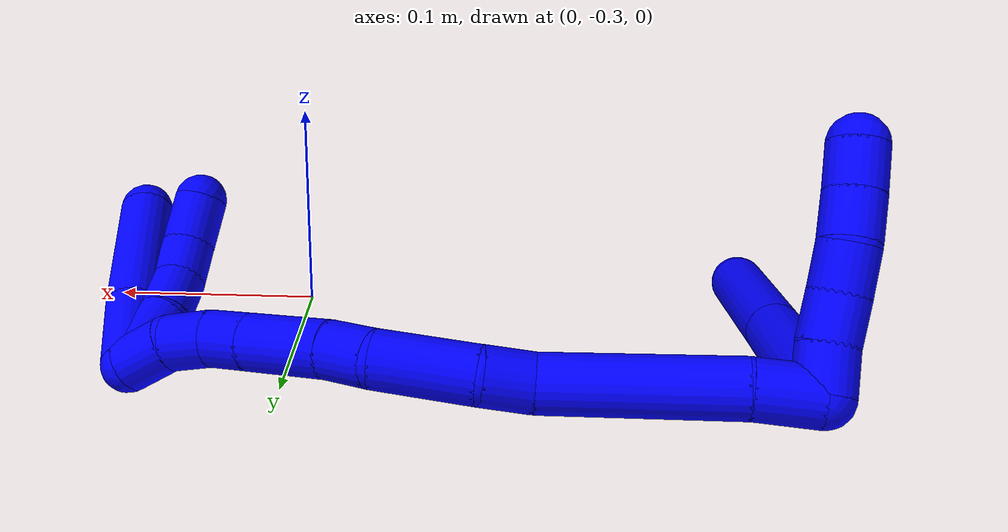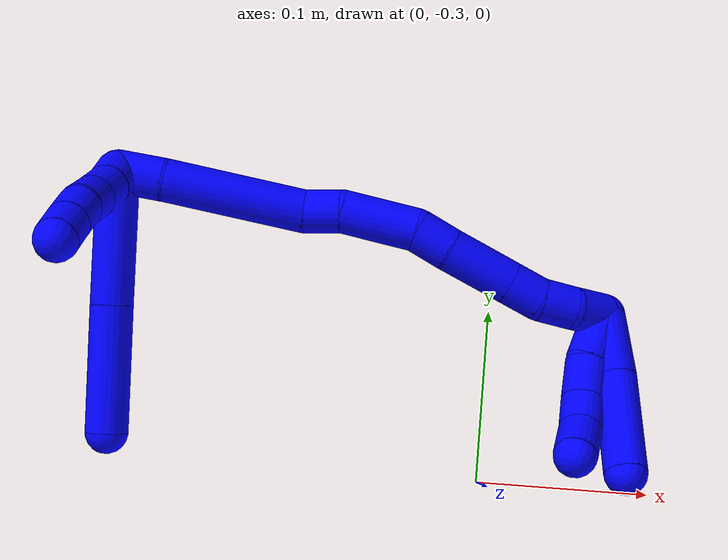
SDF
<sdf version="1.7">
 <world name="default">
  <plugin name="TubeGeneratorPlugin" filename="libtube_generator_plugin.so"/>
  <model name="photoneo_s_sensor">
   <static>1</static>
   <pose>0 0 2 1.57079 1.57079 3.14159</pose>
   <link name="link">
    <inertial><mass>0.1</mass></inertial>
    <sensor name="sensor" type="depth">
     <update_rate>30</update_rate>
     <camera>
      <horizontal_fov>1.22</horizontal_fov>
      <image><width>1920</width><height>1200</height><format>B8G8R8</format></image>
      <clip><near>0.1</near><far>4</far></clip>
      <depth_camera><output>points</output></depth_camera>
     </camera>
     <plugin name="camera_plugin" filename="libgazebo_ros_depth_camera.so">
      <baseline>0.2</baseline>
      <alwaysOn>1</alwaysOn>
      <updateRate>0.0</updateRate>
      <cameraName>camera_ir</cameraName>
      <imageTopicName>/camera/color/image_raw</imageTopicName>
      <cameraInfoTopicName>/camera/color/camera_info</cameraInfoTopicName>
      <depthImageTopicName>/camera/depth/image_raw</depthImageTopicName>
      <depthImageCameraInfoTopicName>/camera/depth/camera_info</depthImageCameraInfoTopicName>
      <pointCloudTopicName>/camera/depth/points</pointCloudTopicName>
      <frameName>fr_optical</frameName>
      <pointCloudCutoff>0.1</pointCloudCutoff>
      <pointCloudCutoffMax>2.0</pointCloudCutoffMax>
      <distortionK1>0</distortionK1>
      <distortionK2>0</distortionK2>
      <distortionK3>0</distortionK3>
      <distortionT1>0</distortionT1>
      <distortionT2>0</distortionT2>
      <CxPrime>0</CxPrime>
      <Cx>0</Cx>
      <Cy>0</Cy>
      <focalLength>0</focalLength>
      <hackBaseline>0</hackBaseline>
     </plugin>
    </sensor>
   </link>
  </model>
  <gravity>0 0 -9.8</gravity>
  <magnetic_field>6e-06 2.3e-05 -4.2e-05</magnetic_field>
  <atmosphere type="adiabatic"/>
  <physics name="default_physics" default="0" type="ode">
   <max_step_size>0.003</max_step_size>
   <real_time_factor>1</real_time_factor>
   <real_time_update_rate>1000</real_time_update_rate>
   <max_contacts>10000</max_contacts>
   <ode>
    <solver>
     <type>quick</type>
     <iters>100</iters>
     <sor>1.3</sor>
     <use_dynamic_moi_rescaling>0</use_dynamic_moi_rescaling>
    </solver>
    <constraints>
     <contact_max_correcting_vel>0</contact_max_correcting_vel>
     <contact_surface_layer>0.001</contact_surface_layer>
     <cfm>0</cfm>
     <erp>0.2</erp>
    </constraints>
   </ode>
  </physics>
  <scene><ambient>0.4 0.4 0.4 1</ambient><background>0.7 0.7 0.7 1</background><shadows>0</shadows></scene>
  <audio><device>default</device></audio>
  <spherical_coordinates>
   <surface_model>EARTH_WGS84</surface_model>
   <latitude_deg>0</latitude_deg>
   <longitude_deg>0</longitude_deg>
   <elevation>0</elevation>
   <heading_deg>0</heading_deg>
  </spherical_coordinates>
  <model name="bin">
   <static>1</static>
   <link name="bottom">
    <collision name="collision-bottom">
     <pose>0 0 -0.01 0 -0 0</pose>
     <geometry><box><size>0.8 0.6 0.02</size></box></geometry>
     <surface>
      <friction><ode><mu>100</mu><mu2>100</mu2></ode></friction>
      <contact><collide_bitmask>65535</collide_bitmask></contact>
     </surface>
    </collision>
   </link>
   <link name="west_wall">
    <collision name="collision-west_wall">
     <pose>-0.41 0 0.1 0 -0 0</pose>
     <geometry><box><size>0.02 0.6 0.2</size></box></geometry>
     <surface>
      <friction><ode><mu>100</mu><mu2>100</mu2></ode></friction>
      <contact><collide_bitmask>65535</collide_bitmask></contact>
     </surface>
    </collision>
   </link>
   <link name="east_wall">
    <collision name="collision-east_wall">
     <pose>0.41 0 0.1 0 -0 0</pose>
     <geometry><box><size>0.02 0.6 0.2</size></box></geometry>
     <surface>
      <friction><ode><mu>100</mu><mu2>100</mu2></ode></friction>
      <contact><collide_bitmask>65535</collide_bitmask></contact>
     </surface>
    </collision>
   </link>
   <link name="south_wall">
    <collision name="collision-south_wall">
     <pose>0 -0.31 0.1 0 -0 0</pose>
     <geometry><box><size>0.8 0.02 0.2</size></box></geometry>
     <surface>
      <friction><ode><mu>100</mu><mu2>100</mu2></ode></friction>
      <contact><collide_bitmask>65535</collide_bitmask></contact>
     </surface>
    </collision>
   </link>
   <link name="north_wall">
    <collision name="collision-north_wall">
     <pose>0 0.31 0.1 0 -0 0</pose>
     <geometry><box><size>0.8 0.02 0.2</size></box></geometry>
     <surface>
      <friction><ode><mu>100</mu><mu2>100</mu2></ode></friction>
      <contact><collide_bitmask>65535</collide_bitmask></contact>
     </surface>
    </collision>
   </link>
  </model>
  <model name="1">
   <static>0</static>
   <link name="1">
    <collision name="collision-cylinder-e_1_2_8">
     <pose>0.02 0.007055 -0.031676 -2.92245 0.552317 -2.40104</pose>
     <geometry><cylinder><radius>0.0125</radius><length>0.07624</length></cylinder></geometry>
     <surface>
      <friction><ode><mu>1.16</mu><mu2>1.16</mu2><slip1>0</slip1><slip2>0</slip2></ode></friction>
      <contact><ode><kp>1e+06</kp><kd>1</kd><max_vel>0</max_vel><min_depth>0.001</min_depth></ode></contact>
     </surface>
    </collision>
    <visual name="visual-cylinder-e_1_2_8">
     <pose>0.02 0.007055 -0.031676 -2.92245 0.552317 -2.40104</pose>
     <geometry><cylinder><radius>0.0125</radius><length>0.07624</length></cylinder></geometry>
     <material><ambient>0 0 1 1</ambient></material>
    </visual>
    <collision name="collision-cylinder-e_2_8_6">
     <pose>0.059569 0.020858 -0.093875 -2.924 0.559322 -2.41471</pose>
     <geometry><cylinder><radius>0.0125</radius><length>0.07376</length></cylinder></geometry>
     <surface>
      <friction><ode><mu>1.16</mu><mu2>1.16</mu2><slip1>0</slip1><slip2>0</slip2></ode></friction>
      <contact><ode><kp>1e+06</kp><kd>1</kd><max_vel>0</max_vel><min_depth>0.001</min_depth></ode></contact>
     </surface>
    </collision>
    <visual name="visual-cylinder-e_2_8_6">
     <pose>0.059569 0.020858 -0.093875 -2.924 0.559322 -2.41471</pose>
     <geometry><cylinder><radius>0.0125</radius><length>0.07376</length></cylinder></geometry>
     <material><ambient>0 0 1 1</ambient></material>
    </visual>
    <collision name="collision-cylinder-e_1_2_9">
     <pose>-0.00272 -0.005026 -0.008206 2.59209 -0.275429 -0.913927</pose>
     <geometry><cylinder><radius>0.0125</radius><length>0.02</length></cylinder></geometry>
     <surface>
      <friction><ode><mu>1.16</mu><mu2>1.16</mu2><slip1>0</slip1><slip2>0</slip2></ode></friction>
      <contact><ode><kp>1e+06</kp><kd>1</kd><max_vel>0</max_vel><min_depth>0.001</min_depth></ode></contact>
     </surface>
    </collision>
    <visual name="visual-cylinder-e_1_2_9">
     <pose>-0.00272 -0.005026 -0.008206 2.59209 -0.275429 -0.913927</pose>
     <geometry><cylinder><radius>0.0125</radius><length>0.02</length></cylinder></geometry>
     <material><ambient>0 0 1 1</ambient></material>
    </visual>
    <collision name="collision-cylinder-e_2_9_10">
     <pose>-0.009518 -0.014748 -0.024243 2.60133 -0.420153 -1.3124</pose>
     <geometry><cylinder><radius>0.0125</radius><length>0.02</length></cylinder></geometry>
     <surface>
      <friction><ode><mu>1.16</mu><mu2>1.16</mu2><slip1>0</slip1><slip2>0</slip2></ode></friction>
      <contact><ode><kp>1e+06</kp><kd>1</kd><max_vel>0</max_vel><min_depth>0.001</min_depth></ode></contact>
     </surface>
    </collision>
    <visual name="visual-cylinder-e_2_9_10">
     <pose>-0.009518 -0.014748 -0.024243 2.60133 -0.420153 -1.3124</pose>
     <geometry><cylinder><radius>0.0125</radius><length>0.02</length></cylinder></geometry>
     <material><ambient>0 0 1 1</ambient></material>
    </visual>
    <collision name="collision-cylinder-e_3_10_11">
     <pose>-0.0179 -0.024846 -0.039305 2.50004 -0.444832 -1.19528</pose>
     <geometry><cylinder><radius>0.0125</radius><length>0.02</length></cylinder></geometry>
     <surface>
      <friction><ode><mu>1.16</mu><mu2>1.16</mu2><slip1>0</slip1><slip2>0</slip2></ode></friction>
      <contact><ode><kp>1e+06</kp><kd>1</kd><max_vel>0</max_vel><min_depth>0.001</min_depth></ode></contact>
     </surface>
    </collision>
    <visual name="visual-cylinder-e_3_10_11">
     <pose>-0.0179 -0.024846 -0.039305 2.50004 -0.444832 -1.19528</pose>
     <geometry><cylinder><radius>0.0125</radius><length>0.02</length></cylinder></geometry>
     <material><ambient>0 0 1 1</ambient></material>
    </visual>
    <collision name="collision-cylinder-e_4_11_12">
     <pose>-0.024987 -0.034983 -0.054893 2.62604 -0.282078 -0.98801</pose>
     <geometry><cylinder><radius>0.0125</radius><length>0.02</length></cylinder></geometry>
     <surface>
      <friction><ode><mu>1.16</mu><mu2>1.16</mu2><slip1>0</slip1><slip2>0</slip2></ode></friction>
      <contact><ode><kp>1e+06</kp><kd>1</kd><max_vel>0</max_vel><min_depth>0.001</min_depth></ode></contact>
     </surface>
    </collision>
    <visual name="visual-cylinder-e_4_11_12">
     <pose>-0.024987 -0.034983 -0.054893 2.62604 -0.282078 -0.98801</pose>
     <geometry><cylinder><radius>0.0125</radius><length>0.02</length></cylinder></geometry>
     <material><ambient>0 0 1 1</ambient></material>
    </visual>
    <collision name="collision-cylinder-e_5_12_5">
     <pose>-0.030398 -0.044728 -0.071496 2.59573 -0.265855 -0.891297</pose>
     <geometry><cylinder><radius>0.0125</radius><length>0.02</length></cylinder></geometry>
     <surface>
      <friction><ode><mu>1.16</mu><mu2>1.16</mu2><slip1>0</slip1><slip2>0</slip2></ode></friction>
      <contact><ode><kp>1e+06</kp><kd>1</kd><max_vel>0</max_vel><min_depth>0.001</min_depth></ode></contact>
     </surface>
    </collision>
    <visual name="visual-cylinder-e_5_12_5">
     <pose>-0.030398 -0.044728 -0.071496 2.59573 -0.265855 -0.891297</pose>
     <geometry><cylinder><radius>0.0125</radius><length>0.02</length></cylinder></geometry>
     <material><ambient>0 0 1 1</ambient></material>
    </visual>
    <collision name="collision-cylinder-e_1_2_13">
     <pose>0.009964 -0.008665 0.002284 1.31303 0.838347 0.661453</pose>
     <geometry><cylinder><radius>0.0125</radius><length>0.026802</length></cylinder></geometry>
     <surface>
      <friction><ode><mu>1.16</mu><mu2>1.16</mu2><slip1>0</slip1><slip2>0</slip2></ode></friction>
      <contact><ode><kp>1e+06</kp><kd>1</kd><max_vel>0</max_vel><min_depth>0.001</min_depth></ode></contact>
     </surface>
    </collision>
    <visual name="visual-cylinder-e_1_2_13">
     <pose>0.009964 -0.008665 0.002284 1.31303 0.838347 0.661453</pose>
     <geometry><cylinder><radius>0.0125</radius><length>0.026802</length></cylinder></geometry>
     <material><ambient>0 0 1 1</ambient></material>
    </visual>
    <collision name="collision-cylinder-e_2_13_14">
     <pose>0.053494 -0.040015 0.012532 1.23319 0.949222 0.698464</pose>
     <geometry><cylinder><radius>0.0125</radius><length>0.082576</length></cylinder></geometry>
     <surface>
      <friction><ode><mu>1.16</mu><mu2>1.16</mu2><slip1>0</slip1><slip2>0</slip2></ode></friction>
      <contact><ode><kp>1e+06</kp><kd>1</kd><max_vel>0</max_vel><min_depth>0.001</min_depth></ode></contact>
     </surface>
    </collision>
    <visual name="visual-cylinder-e_2_13_14">
     <pose>0.053494 -0.040015 0.012532 1.23319 0.949222 0.698464</pose>
     <geometry><cylinder><radius>0.0125</radius><length>0.082576</length></cylinder></geometry>
     <material><ambient>0 0 1 1</ambient></material>
    </visual>
    <collision name="collision-cylinder-e_3_14_15">
     <pose>0.093645 -0.070942 0.023577 1.21304 0.642592 0.453847</pose>
     <geometry><cylinder><radius>0.0125</radius><length>0.02198</length></cylinder></geometry>
     <surface>
      <friction><ode><mu>1.16</mu><mu2>1.16</mu2><slip1>0</slip1><slip2>0</slip2></ode></friction>
      <contact><ode><kp>1e+06</kp><kd>1</kd><max_vel>0</max_vel><min_depth>0.001</min_depth></ode></contact>
     </surface>
    </collision>
    <visual name="visual-cylinder-e_3_14_15">
     <pose>0.093645 -0.070942 0.023577 1.21304 0.642592 0.453847</pose>
     <geometry><cylinder><radius>0.0125</radius><length>0.02198</length></cylinder></geometry>
     <material><ambient>0 0 1 1</ambient></material>
    </visual>
    <collision name="collision-cylinder-e_4_15_16">
     <pose>0.116918 -0.093148 0.029065 1.40012 0.866754 0.743339</pose>
     <geometry><cylinder><radius>0.0125</radius><length>0.043783</length></cylinder></geometry>
     <surface>
      <friction><ode><mu>1.16</mu><mu2>1.16</mu2><slip1>0</slip1><slip2>0</slip2></ode></friction>
      <contact><ode><kp>1e+06</kp><kd>1</kd><max_vel>0</max_vel><min_depth>0.001</min_depth></ode></contact>
     </surface>
    </collision>
    <visual name="visual-cylinder-e_4_15_16">
     <pose>0.116918 -0.093148 0.029065 1.40012 0.866754 0.743339</pose>
     <geometry><cylinder><radius>0.0125</radius><length>0.043783</length></cylinder></geometry>
     <material><ambient>0 0 1 1</ambient></material>
    </visual>
    <collision name="collision-cylinder-e_5_16_17">
     <pose>0.142998 -0.112185 0.030248 1.80747 1.06376 1.28348</pose>
     <geometry><cylinder><radius>0.0125</radius><length>0.021492</length></cylinder></geometry>
     <surface>
      <friction><ode><mu>1.16</mu><mu2>1.16</mu2><slip1>0</slip1><slip2>0</slip2></ode></friction>
      <contact><ode><kp>1e+06</kp><kd>1</kd><max_vel>0</max_vel><min_depth>0.001</min_depth></ode></contact>
     </surface>
    </collision>
    <visual name="visual-cylinder-e_5_16_17">
     <pose>0.142998 -0.112185 0.030248 1.80747 1.06376 1.28348</pose>
     <geometry><cylinder><radius>0.0125</radius><length>0.021492</length></cylinder></geometry>
     <material><ambient>0 0 1 1</ambient></material>
    </visual>
    <collision name="collision-cylinder-e_6_17_18">
     <pose>0.170164 -0.125532 0.028208 1.66915 1.13318 1.22418</pose>
     <geometry><cylinder><radius>0.0125</radius><length>0.039241</length></cylinder></geometry>
     <surface>
      <friction><ode><mu>1.16</mu><mu2>1.16</mu2><slip1>0</slip1><slip2>0</slip2></ode></friction>
      <contact><ode><kp>1e+06</kp><kd>1</kd><max_vel>0</max_vel><min_depth>0.001</min_depth></ode></contact>
     </surface>
    </collision>
    <visual name="visual-cylinder-e_6_17_18">
     <pose>0.170164 -0.125532 0.028208 1.66915 1.13318 1.22418</pose>
     <geometry><cylinder><radius>0.0125</radius><length>0.039241</length></cylinder></geometry>
     <material><ambient>0 0 1 1</ambient></material>
    </visual>
    <collision name="collision-cylinder-e_7_18_19">
     <pose>0.197286 -0.138134 0.026966 1.66872 1.13552 1.2262</pose>
     <geometry><cylinder><radius>0.0125</radius><length>0.020625</length></cylinder></geometry>
     <surface>
      <friction><ode><mu>1.16</mu><mu2>1.16</mu2><slip1>0</slip1><slip2>0</slip2></ode></friction>
      <contact><ode><kp>1e+06</kp><kd>1</kd><max_vel>0</max_vel><min_depth>0.001</min_depth></ode></contact>
     </surface>
    </collision>
    <visual name="visual-cylinder-e_7_18_19">
     <pose>0.197286 -0.138134 0.026966 1.66872 1.13552 1.2262</pose>
     <geometry><cylinder><radius>0.0125</radius><length>0.020625</length></cylinder></geometry>
     <material><ambient>0 0 1 1</ambient></material>
    </visual>
    <collision name="collision-cylinder-e_8_19_20">
     <pose>0.215682 -0.146893 0.028825 1.0949 1.06706 0.691238</pose>
     <geometry><cylinder><radius>0.0125</radius><length>0.020655</length></cylinder></geometry>
     <surface>
      <friction><ode><mu>1.16</mu><mu2>1.16</mu2><slip1>0</slip1><slip2>0</slip2></ode></friction>
      <contact><ode><kp>1e+06</kp><kd>1</kd><max_vel>0</max_vel><min_depth>0.001</min_depth></ode></contact>
     </surface>
    </collision>
    <visual name="visual-cylinder-e_8_19_20">
     <pose>0.215682 -0.146893 0.028825 1.0949 1.06706 0.691238</pose>
     <geometry><cylinder><radius>0.0125</radius><length>0.020655</length></cylinder></geometry>
     <material><ambient>0 0 1 1</ambient></material>
    </visual>
    <collision name="collision-cylinder-e_9_20_1">
     <pose>0.23525 -0.152735 0.035322 0.32319 1.17131 0.215414</pose>
     <geometry><cylinder><radius>0.0125</radius><length>0.022846</length></cylinder></geometry>
     <surface>
      <friction><ode><mu>1.16</mu><mu2>1.16</mu2><slip1>0</slip1><slip2>0</slip2></ode></friction>
      <contact><ode><kp>1e+06</kp><kd>1</kd><max_vel>0</max_vel><min_depth>0.001</min_depth></ode></contact>
     </surface>
    </collision>
    <visual name="visual-cylinder-e_9_20_1">
     <pose>0.23525 -0.152735 0.035322 0.32319 1.17131 0.215414</pose>
     <geometry><cylinder><radius>0.0125</radius><length>0.022846</length></cylinder></geometry>
     <material><ambient>0 0 1 1</ambient></material>
    </visual>
    <collision name="collision-cylinder-e_1_1_21">
     <pose>0.246062 -0.153824 0.023904 -3.12098 0.018427 -1.45886</pose>
     <geometry><cylinder><radius>0.0125</radius><length>0.031273</length></cylinder></geometry>
     <surface>
      <friction><ode><mu>1.16</mu><mu2>1.16</mu2><slip1>0</slip1><slip2>0</slip2></ode></friction>
      <contact><ode><kp>1e+06</kp><kd>1</kd><max_vel>0</max_vel><min_depth>0.001</min_depth></ode></contact>
     </surface>
    </collision>
    <visual name="visual-cylinder-e_1_1_21">
     <pose>0.246062 -0.153824 0.023904 -3.12098 0.018427 -1.45886</pose>
     <geometry><cylinder><radius>0.0125</radius><length>0.031273</length></cylinder></geometry>
     <material><ambient>0 0 1 1</ambient></material>
    </visual>
    <collision name="collision-cylinder-e_2_21_22">
     <pose>0.248907 -0.154537 -0.003386 3.05301 0.21505 2.36239</pose>
     <geometry><cylinder><radius>0.0125</radius><length>0.023965</length></cylinder></geometry>
     <surface>
      <friction><ode><mu>1.16</mu><mu2>1.16</mu2><slip1>0</slip1><slip2>0</slip2></ode></friction>
      <contact><ode><kp>1e+06</kp><kd>1</kd><max_vel>0</max_vel><min_depth>0.001</min_depth></ode></contact>
     </surface>
    </collision>
    <visual name="visual-cylinder-e_2_21_22">
     <pose>0.248907 -0.154537 -0.003386 3.05301 0.21505 2.36239</pose>
     <geometry><cylinder><radius>0.0125</radius><length>0.023965</length></cylinder></geometry>
     <material><ambient>0 0 1 1</ambient></material>
    </visual>
    <collision name="collision-cylinder-e_3_22_23">
     <pose>0.251683 -0.158726 -0.025015 2.83522 0.020957 0.135531</pose>
     <geometry><cylinder><radius>0.0125</radius><length>0.020916</length></cylinder></geometry>
     <surface>
      <friction><ode><mu>1.16</mu><mu2>1.16</mu2><slip1>0</slip1><slip2>0</slip2></ode></friction>
      <contact><ode><kp>1e+06</kp><kd>1</kd><max_vel>0</max_vel><min_depth>0.001</min_depth></ode></contact>
     </surface>
    </collision>
    <visual name="visual-cylinder-e_3_22_23">
     <pose>0.251683 -0.158726 -0.025015 2.83522 0.020957 0.135531</pose>
     <geometry><cylinder><radius>0.0125</radius><length>0.020916</length></cylinder></geometry>
     <material><ambient>0 0 1 1</ambient></material>
    </visual>
    <collision name="collision-cylinder-e_4_23_4">
     <pose>0.248937 -0.16685 -0.045409 2.69672 -0.25134 -1.0188</pose>
     <geometry><cylinder><radius>0.0125</radius><length>0.023847</length></cylinder></geometry>
     <surface>
      <friction><ode><mu>1.16</mu><mu2>1.16</mu2><slip1>0</slip1><slip2>0</slip2></ode></friction>
      <contact><ode><kp>1e+06</kp><kd>1</kd><max_vel>0</max_vel><min_depth>0.001</min_depth></ode></contact>
     </surface>
    </collision>
    <visual name="visual-cylinder-e_4_23_4">
     <pose>0.248937 -0.16685 -0.045409 2.69672 -0.25134 -1.0188</pose>
     <geometry><cylinder><radius>0.0125</radius><length>0.023847</length></cylinder></geometry>
     <material><ambient>0 0 1 1</ambient></material>
    </visual>
    <collision name="collision-cylinder-e_1_1_24">
     <pose>0.253622 -0.159054 0.022442 2.86197 0.415616 1.96453</pose>
     <geometry><cylinder><radius>0.0125</radius><length>0.038876</length></cylinder></geometry>
     <surface>
      <friction><ode><mu>1.16</mu><mu2>1.16</mu2><slip1>0</slip1><slip2>0</slip2></ode></friction>
      <contact><ode><kp>1e+06</kp><kd>1</kd><max_vel>0</max_vel><min_depth>0.001</min_depth></ode></contact>
     </surface>
    </collision>
    <visual name="visual-cylinder-e_1_1_24">
     <pose>0.253622 -0.159054 0.022442 2.86197 0.415616 1.96453</pose>
     <geometry><cylinder><radius>0.0125</radius><length>0.038876</length></cylinder></geometry>
     <material><ambient>0 0 1 1</ambient></material>
    </visual>
    <collision name="collision-cylinder-e_2_24_3">
     <pose>0.26837 -0.173552 -0.022837 2.81364 0.227718 1.20948</pose>
     <geometry><cylinder><radius>0.0125</radius><length>0.061124</length></cylinder></geometry>
     <surface>
      <friction><ode><mu>1.16</mu><mu2>1.16</mu2><slip1>0</slip1><slip2>0</slip2></ode></friction>
      <contact><ode><kp>1e+06</kp><kd>1</kd><max_vel>0</max_vel><min_depth>0.001</min_depth></ode></contact>
     </surface>
    </collision>
    <visual name="visual-cylinder-e_2_24_3">
     <pose>0.26837 -0.173552 -0.022837 2.81364 0.227718 1.20948</pose>
     <geometry><cylinder><radius>0.0125</radius><length>0.061124</length></cylinder></geometry>
     <material><ambient>0 0 1 1</ambient></material>
    </visual>
    <collision name="collision-sphere-3">
     <pose>0.275269 -0.183142 -0.051023 0 -0 0</pose>
     <geometry><sphere><radius>0.0125</radius></sphere></geometry>
     <surface>
      <friction><ode><mu>1.16</mu><mu2>1.16</mu2><slip1>0</slip1><slip2>0</slip2></ode></friction>
      <contact><ode><kp>1e+06</kp><kd>1</kd><max_vel>0</max_vel><min_depth>0.001</min_depth></ode></contact>
     </surface>
    </collision>
    <visual name="visual-sphere-3">
     <pose>0.275269 -0.183142 -0.051023 0 -0 0</pose>
     <geometry><sphere><radius>0.0125</radius></sphere></geometry>
     <material><ambient>0 0 1 1</ambient></material>
    </visual>
    <collision name="collision-sphere-24">
     <pose>0.26147 -0.163962 0.005349 0 -0 0</pose>
     <geometry><sphere><radius>0.0125</radius></sphere></geometry>
     <surface>
      <friction><ode><mu>1.16</mu><mu2>1.16</mu2><slip1>0</slip1><slip2>0</slip2></ode></friction>
      <contact><ode><kp>1e+06</kp><kd>1</kd><max_vel>0</max_vel><min_depth>0.001</min_depth></ode></contact>
     </surface>
    </collision>
    <visual name="visual-sphere-24">
     <pose>0.26147 -0.163962 0.005349 0 -0 0</pose>
     <geometry><sphere><radius>0.0125</radius></sphere></geometry>
     <material><ambient>0 0 1 1</ambient></material>
    </visual>
    <collision name="collision-sphere-4">
     <pose>0.245971 -0.17182 -0.055834 0 -0 0</pose>
     <geometry><sphere><radius>0.0125</radius></sphere></geometry>
     <surface>
      <friction><ode><mu>1.16</mu><mu2>1.16</mu2><slip1>0</slip1><slip2>0</slip2></ode></friction>
      <contact><ode><kp>1e+06</kp><kd>1</kd><max_vel>0</max_vel><min_depth>0.001</min_depth></ode></contact>
     </surface>
    </collision>
    <visual name="visual-sphere-4">
     <pose>0.245971 -0.17182 -0.055834 0 -0 0</pose>
     <geometry><sphere><radius>0.0125</radius></sphere></geometry>
     <material><ambient>0 0 1 1</ambient></material>
    </visual>
    <collision name="collision-sphere-23">
     <pose>0.251902 -0.16188 -0.034984 0 -0 0</pose>
     <geometry><sphere><radius>0.0125</radius></sphere></geometry>
     <surface>
      <friction><ode><mu>1.16</mu><mu2>1.16</mu2><slip1>0</slip1><slip2>0</slip2></ode></friction>
      <contact><ode><kp>1e+06</kp><kd>1</kd><max_vel>0</max_vel><min_depth>0.001</min_depth></ode></contact>
     </surface>
    </collision>
    <visual name="visual-sphere-23">
     <pose>0.251902 -0.16188 -0.034984 0 -0 0</pose>
     <geometry><sphere><radius>0.0125</radius></sphere></geometry>
     <material><ambient>0 0 1 1</ambient></material>
    </visual>
    <collision name="collision-sphere-22">
     <pose>0.251464 -0.155573 -0.015047 0 -0 0</pose>
     <geometry><sphere><radius>0.0125</radius></sphere></geometry>
     <surface>
      <friction><ode><mu>1.16</mu><mu2>1.16</mu2><slip1>0</slip1><slip2>0</slip2></ode></friction>
      <contact><ode><kp>1e+06</kp><kd>1</kd><max_vel>0</max_vel><min_depth>0.001</min_depth></ode></contact>
     </surface>
    </collision>
    <visual name="visual-sphere-22">
     <pose>0.251464 -0.155573 -0.015047 0 -0 0</pose>
     <geometry><sphere><radius>0.0125</radius></sphere></geometry>
     <material><ambient>0 0 1 1</ambient></material>
    </visual>
    <collision name="collision-sphere-21">
     <pose>0.24635 -0.153502 0.008274 0 -0 0</pose>
     <geometry><sphere><radius>0.0125</radius></sphere></geometry>
     <surface>
      <friction><ode><mu>1.16</mu><mu2>1.16</mu2><slip1>0</slip1><slip2>0</slip2></ode></friction>
      <contact><ode><kp>1e+06</kp><kd>1</kd><max_vel>0</max_vel><min_depth>0.001</min_depth></ode></contact>
     </surface>
    </collision>
    <visual name="visual-sphere-21">
     <pose>0.24635 -0.153502 0.008274 0 -0 0</pose>
     <geometry><sphere><radius>0.0125</radius></sphere></geometry>
     <material><ambient>0 0 1 1</ambient></material>
    </visual>
    <collision name="collision-sphere-1">
     <pose>0.245774 -0.154146 0.039535 0 -0 0</pose>
     <geometry><sphere><radius>0.0125</radius></sphere></geometry>
     <surface>
      <friction><ode><mu>1.16</mu><mu2>1.16</mu2><slip1>0</slip1><slip2>0</slip2></ode></friction>
      <contact><ode><kp>1e+06</kp><kd>1</kd><max_vel>0</max_vel><min_depth>0.001</min_depth></ode></contact>
     </surface>
    </collision>
    <visual name="visual-sphere-1">
     <pose>0.245774 -0.154146 0.039535 0 -0 0</pose>
     <geometry><sphere><radius>0.0125</radius></sphere></geometry>
     <material><ambient>0 0 1 1</ambient></material>
    </visual>
    <collision name="collision-sphere-11">
     <pose>-0.022203 -0.030248 -0.046537 0 -0 0</pose>
     <geometry><sphere><radius>0.0125</radius></sphere></geometry>
     <surface>
      <friction><ode><mu>1.16</mu><mu2>1.16</mu2><slip1>0</slip1><slip2>0</slip2></ode></friction>
      <contact><ode><kp>1e+06</kp><kd>1</kd><max_vel>0</max_vel><min_depth>0.001</min_depth></ode></contact>
     </surface>
    </collision>
    <visual name="visual-sphere-11">
     <pose>-0.022203 -0.030248 -0.046537 0 -0 0</pose>
     <geometry><sphere><radius>0.0125</radius></sphere></geometry>
     <material><ambient>0 0 1 1</ambient></material>
    </visual>
    <collision name="collision-sphere-10">
     <pose>-0.013597 -0.019444 -0.032073 0 -0 0</pose>
     <geometry><sphere><radius>0.0125</radius></sphere></geometry>
     <surface>
      <friction><ode><mu>1.16</mu><mu2>1.16</mu2><slip1>0</slip1><slip2>0</slip2></ode></friction>
      <contact><ode><kp>1e+06</kp><kd>1</kd><max_vel>0</max_vel><min_depth>0.001</min_depth></ode></contact>
     </surface>
    </collision>
    <visual name="visual-sphere-10">
     <pose>-0.013597 -0.019444 -0.032073 0 -0 0</pose>
     <geometry><sphere><radius>0.0125</radius></sphere></geometry>
     <material><ambient>0 0 1 1</ambient></material>
    </visual>
    <collision name="collision-sphere-6">
     <pose>0.079138 0.027606 -0.124398 0 -0 0</pose>
     <geometry><sphere><radius>0.0125</radius></sphere></geometry>
     <surface>
      <friction><ode><mu>1.16</mu><mu2>1.16</mu2><slip1>0</slip1><slip2>0</slip2></ode></friction>
      <contact><ode><kp>1e+06</kp><kd>1</kd><max_vel>0</max_vel><min_depth>0.001</min_depth></ode></contact>
     </surface>
    </collision>
    <visual name="visual-sphere-6">
     <pose>0.079138 0.027606 -0.124398 0 -0 0</pose>
     <geometry><sphere><radius>0.0125</radius></sphere></geometry>
     <material><ambient>0 0 1 1</ambient></material>
    </visual>
    <collision name="collision-sphere-9">
     <pose>-0.005439 -0.010052 -0.016413 0 -0 0</pose>
     <geometry><sphere><radius>0.0125</radius></sphere></geometry>
     <surface>
      <friction><ode><mu>1.16</mu><mu2>1.16</mu2><slip1>0</slip1><slip2>0</slip2></ode></friction>
      <contact><ode><kp>1e+06</kp><kd>1</kd><max_vel>0</max_vel><min_depth>0.001</min_depth></ode></contact>
     </surface>
    </collision>
    <visual name="visual-sphere-9">
     <pose>-0.005439 -0.010052 -0.016413 0 -0 0</pose>
     <geometry><sphere><radius>0.0125</radius></sphere></geometry>
     <material><ambient>0 0 1 1</ambient></material>
    </visual>
    <collision name="collision-sphere-2">
     <geometry><sphere><radius>0.0125</radius></sphere></geometry>
     <surface>
      <friction><ode><mu>1.16</mu><mu2>1.16</mu2><slip1>0</slip1><slip2>0</slip2></ode></friction>
      <contact><ode><kp>1e+06</kp><kd>1</kd><max_vel>0</max_vel><min_depth>0.001</min_depth></ode></contact>
     </surface>
    </collision>
    <visual name="visual-sphere-2">
     <geometry><sphere><radius>0.0125</radius></sphere></geometry>
     <material><ambient>0 0 1 1</ambient></material>
    </visual>
    <collision name="collision-sphere-19">
     <pose>0.206637 -0.142462 0.026541 0 -0 0</pose>
     <geometry><sphere><radius>0.0125</radius></sphere></geometry>
     <surface>
      <friction><ode><mu>1.16</mu><mu2>1.16</mu2><slip1>0</slip1><slip2>0</slip2></ode></friction>
      <contact><ode><kp>1e+06</kp><kd>1</kd><max_vel>0</max_vel><min_depth>0.001</min_depth></ode></contact>
     </surface>
    </collision>
    <visual name="visual-sphere-19">
     <pose>0.206637 -0.142462 0.026541 0 -0 0</pose>
     <geometry><sphere><radius>0.0125</radius></sphere></geometry>
     <material><ambient>0 0 1 1</ambient></material>
    </visual>
    <collision name="collision-sphere-8">
     <pose>0.04 0.014109 -0.063352 0 -0 0</pose>
     <geometry><sphere><radius>0.0125</radius></sphere></geometry>
     <surface>
      <friction><ode><mu>1.16</mu><mu2>1.16</mu2><slip1>0</slip1><slip2>0</slip2></ode></friction>
      <contact><ode><kp>1e+06</kp><kd>1</kd><max_vel>0</max_vel><min_depth>0.001</min_depth></ode></contact>
     </surface>
    </collision>
    <visual name="visual-sphere-8">
     <pose>0.04 0.014109 -0.063352 0 -0 0</pose>
     <geometry><sphere><radius>0.0125</radius></sphere></geometry>
     <material><ambient>0 0 1 1</ambient></material>
    </visual>
    <collision name="collision-sphere-12">
     <pose>-0.02777 -0.039719 -0.063249 0 -0 0</pose>
     <geometry><sphere><radius>0.0125</radius></sphere></geometry>
     <surface>
      <friction><ode><mu>1.16</mu><mu2>1.16</mu2><slip1>0</slip1><slip2>0</slip2></ode></friction>
      <contact><ode><kp>1e+06</kp><kd>1</kd><max_vel>0</max_vel><min_depth>0.001</min_depth></ode></contact>
     </surface>
    </collision>
    <visual name="visual-sphere-12">
     <pose>-0.02777 -0.039719 -0.063249 0 -0 0</pose>
     <geometry><sphere><radius>0.0125</radius></sphere></geometry>
     <material><ambient>0 0 1 1</ambient></material>
    </visual>
    <collision name="collision-sphere-5">
     <pose>-0.033025 -0.049737 -0.079742 0 -0 0</pose>
     <geometry><sphere><radius>0.0125</radius></sphere></geometry>
     <surface>
      <friction><ode><mu>1.16</mu><mu2>1.16</mu2><slip1>0</slip1><slip2>0</slip2></ode></friction>
      <contact><ode><kp>1e+06</kp><kd>1</kd><max_vel>0</max_vel><min_depth>0.001</min_depth></ode></contact>
     </surface>
    </collision>
    <visual name="visual-sphere-5">
     <pose>-0.033025 -0.049737 -0.079742 0 -0 0</pose>
     <geometry><sphere><radius>0.0125</radius></sphere></geometry>
     <material><ambient>0 0 1 1</ambient></material>
    </visual>
    <collision name="collision-sphere-13">
     <pose>0.019928 -0.01733 0.004569 0 -0 0</pose>
     <geometry><sphere><radius>0.0125</radius></sphere></geometry>
     <surface>
      <friction><ode><mu>1.16</mu><mu2>1.16</mu2><slip1>0</slip1><slip2>0</slip2></ode></friction>
      <contact><ode><kp>1e+06</kp><kd>1</kd><max_vel>0</max_vel><min_depth>0.001</min_depth></ode></contact>
     </surface>
    </collision>
    <visual name="visual-sphere-13">
     <pose>0.019928 -0.01733 0.004569 0 -0 0</pose>
     <geometry><sphere><radius>0.0125</radius></sphere></geometry>
     <material><ambient>0 0 1 1</ambient></material>
    </visual>
    <collision name="collision-sphere-14">
     <pose>0.087059 -0.062701 0.020496 0 -0 0</pose>
     <geometry><sphere><radius>0.0125</radius></sphere></geometry>
     <surface>
      <friction><ode><mu>1.16</mu><mu2>1.16</mu2><slip1>0</slip1><slip2>0</slip2></ode></friction>
      <contact><ode><kp>1e+06</kp><kd>1</kd><max_vel>0</max_vel><min_depth>0.001</min_depth></ode></contact>
     </surface>
    </collision>
    <visual name="visual-sphere-14">
     <pose>0.087059 -0.062701 0.020496 0 -0 0</pose>
     <geometry><sphere><radius>0.0125</radius></sphere></geometry>
     <material><ambient>0 0 1 1</ambient></material>
    </visual>
    <collision name="collision-sphere-15">
     <pose>0.100231 -0.079183 0.026658 0 -0 0</pose>
     <geometry><sphere><radius>0.0125</radius></sphere></geometry>
     <surface>
      <friction><ode><mu>1.16</mu><mu2>1.16</mu2><slip1>0</slip1><slip2>0</slip2></ode></friction>
      <contact><ode><kp>1e+06</kp><kd>1</kd><max_vel>0</max_vel><min_depth>0.001</min_depth></ode></contact>
     </surface>
    </collision>
    <visual name="visual-sphere-15">
     <pose>0.100231 -0.079183 0.026658 0 -0 0</pose>
     <geometry><sphere><radius>0.0125</radius></sphere></geometry>
     <material><ambient>0 0 1 1</ambient></material>
    </visual>
    <collision name="collision-sphere-16">
     <pose>0.133604 -0.107112 0.031471 0 -0 0</pose>
     <geometry><sphere><radius>0.0125</radius></sphere></geometry>
     <surface>
      <friction><ode><mu>1.16</mu><mu2>1.16</mu2><slip1>0</slip1><slip2>0</slip2></ode></friction>
      <contact><ode><kp>1e+06</kp><kd>1</kd><max_vel>0</max_vel><min_depth>0.001</min_depth></ode></contact>
     </surface>
    </collision>
    <visual name="visual-sphere-16">
     <pose>0.133604 -0.107112 0.031471 0 -0 0</pose>
     <geometry><sphere><radius>0.0125</radius></sphere></geometry>
     <material><ambient>0 0 1 1</ambient></material>
    </visual>
    <collision name="collision-sphere-17">
     <pose>0.152392 -0.117257 0.029024 0 -0 0</pose>
     <geometry><sphere><radius>0.0125</radius></sphere></geometry>
     <surface>
      <friction><ode><mu>1.16</mu><mu2>1.16</mu2><slip1>0</slip1><slip2>0</slip2></ode></friction>
      <contact><ode><kp>1e+06</kp><kd>1</kd><max_vel>0</max_vel><min_depth>0.001</min_depth></ode></contact>
     </surface>
    </collision>
    <visual name="visual-sphere-17">
     <pose>0.152392 -0.117257 0.029024 0 -0 0</pose>
     <geometry><sphere><radius>0.0125</radius></sphere></geometry>
     <material><ambient>0 0 1 1</ambient></material>
    </visual>
    <collision name="collision-sphere-18">
     <pose>0.187935 -0.133807 0.027391 0 -0 0</pose>
     <geometry><sphere><radius>0.0125</radius></sphere></geometry>
     <surface>
      <friction><ode><mu>1.16</mu><mu2>1.16</mu2><slip1>0</slip1><slip2>0</slip2></ode></friction>
      <contact><ode><kp>1e+06</kp><kd>1</kd><max_vel>0</max_vel><min_depth>0.001</min_depth></ode></contact>
     </surface>
    </collision>
    <visual name="visual-sphere-18">
     <pose>0.187935 -0.133807 0.027391 0 -0 0</pose>
     <geometry><sphere><radius>0.0125</radius></sphere></geometry>
     <material><ambient>0 0 1 1</ambient></material>
    </visual>
    <collision name="collision-sphere-20">
     <pose>0.224727 -0.151324 0.031109 0 -0 0</pose>
     <geometry><sphere><radius>0.0125</radius></sphere></geometry>
     <surface>
      <friction><ode><mu>1.16</mu><mu2>1.16</mu2><slip1>0</slip1><slip2>0</slip2></ode></friction>
      <contact><ode><kp>1e+06</kp><kd>1</kd><max_vel>0</max_vel><min_depth>0.001</min_depth></ode></contact>
     </surface>
    </collision>
    <visual name="visual-sphere-20">
     <pose>0.224727 -0.151324 0.031109 0 -0 0</pose>
     <geometry><sphere><radius>0.0125</radius></sphere></geometry>
     <material><ambient>0 0 1 1</ambient></material>
    </visual>
    <inertial>
     <pose>0.121124 -0.078531 -0.010884 0 -0 0</pose>
     <mass>0.75</mass>
     <inertia><ixx>2e-05</ixx><ixy>0</ixy><ixz>0</ixz><iyy>9.5e-05</iyy><iyz>0</iyz><izz>-9.4e-05</izz></inertia>
    </inertial>
   </link>
   <pose>-0.21945 -0.138512 0.036719 -2.01377 0.552591 -0.559538</pose>
  </model>
 </world>
</sdf>
